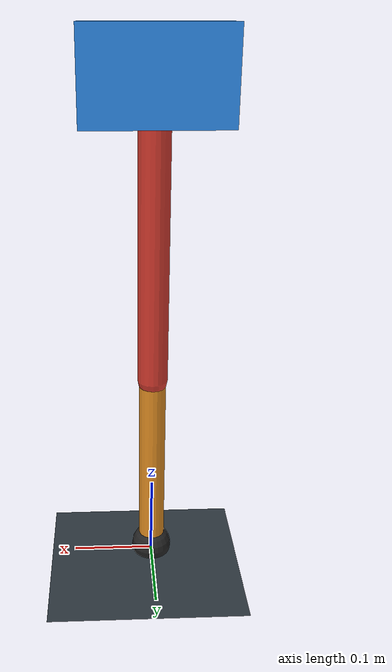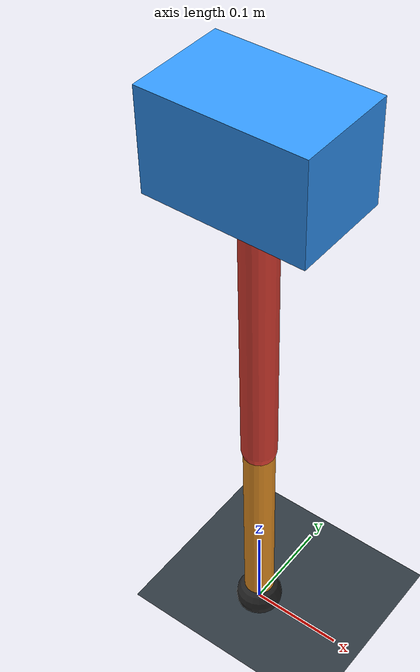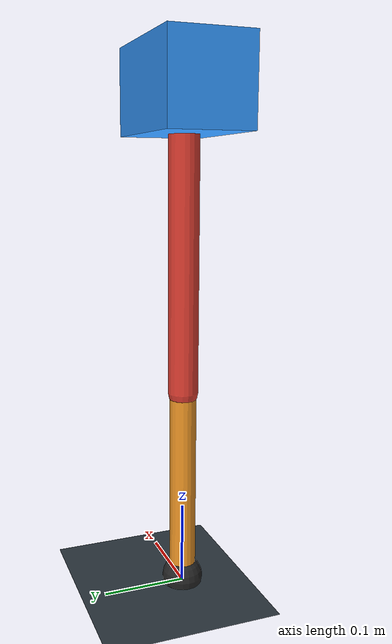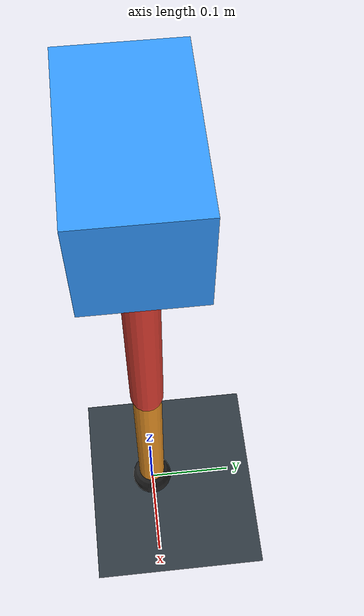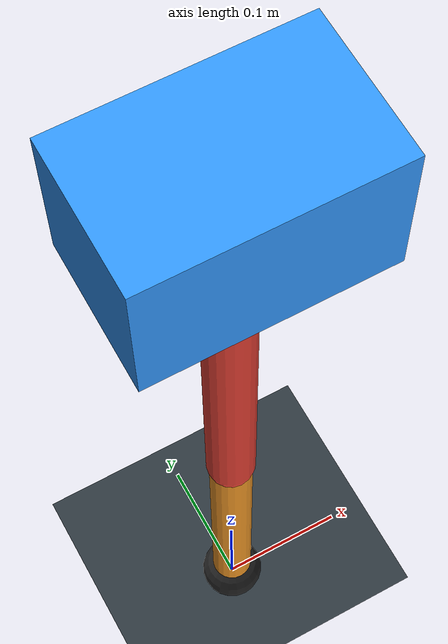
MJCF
<mujoco model="single_axis_two_bar">
  <compiler angle="radian" inertiafromgeom="true"/>
  <option timestep="0.001" integrator="implicitfast" gravity="0 0 -9.81"/>
  <default>
    <joint damping="0.08"/>
    <geom friction="1.2 0.01 0.0001" condim="3"/>
  </default>
  <worldbody>
    <geom name="floor" type="plane" size="5 5 0.1" rgba="0.18 0.22 0.25 1"/>
    <body name="carriage" pos="0 0 0.5965662161296433">
      <joint name="pole_slide" type="slide" axis="0 0 1"/>
      <geom name="payload" type="box" size="0.08 0.05 0.05" mass="2.3594404503052364" rgba="0.2 0.6 1 1"/>
      <body name="thigh" pos="0 0 0">
        <joint name="hip" type="hinge" axis="0 1 0"/>
        <geom name="thigh_link" type="capsule" fromto="0 0 0 0 0 -0.3499991928440188" size="0.018" mass="0.24937904973265554" rgba="0.9 0.25 0.2 1"/>
        <body name="shank" pos="0 0 -0.3499991928440188">
          <joint name="knee" type="hinge" axis="0 1 0"/>
          <geom name="shank_link" type="capsule" fromto="0 0 0 0 0 -0.23924432893911865" size="0.016" mass="0.17046474570400955" rgba="0.95 0.6 0.15 1"/>
          <geom name="foot" type="sphere" pos="0 0 -0.23924432893911865" size="0.025" mass="0.03" rgba="0.15 0.15 0.15 1"/>
          <site name="toe" pos="0 0 -0.23924432893911865" size="0.008"/>
        </body>
      </body>
    </body>
  </worldbody>
  <actuator>
    <motor name="hip_motor" joint="hip" ctrlrange="-35.72464859454057 35.72464859454057"/>
    <motor name="knee_motor" joint="knee" ctrlrange="-104.31046752318646 104.31046752318646"/>
  </actuator>
</mujoco>
